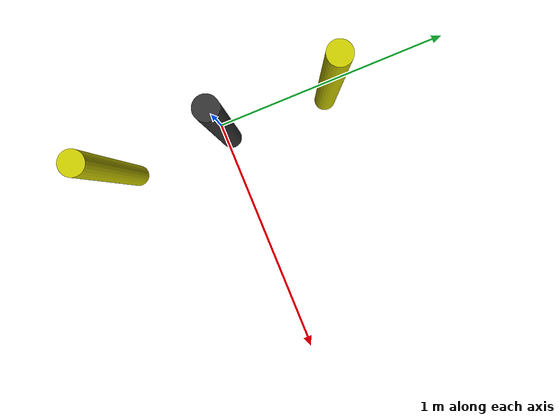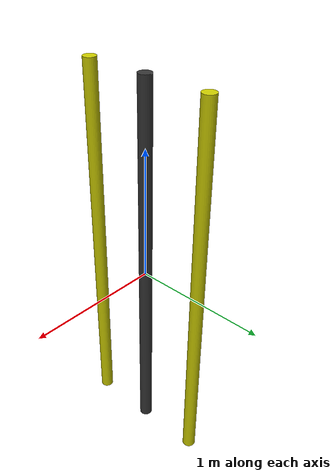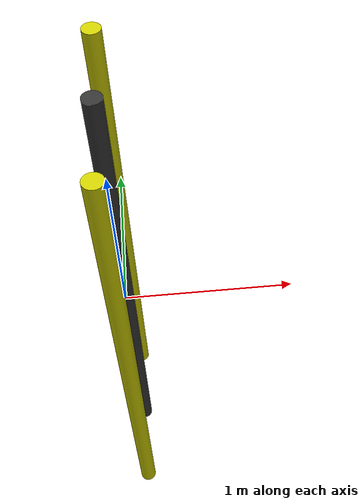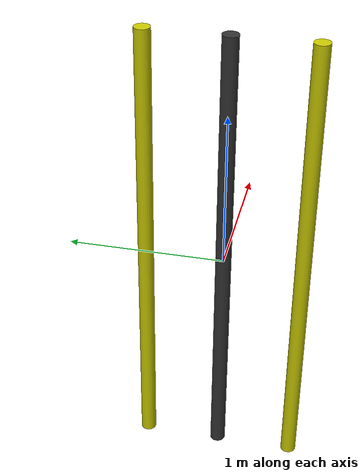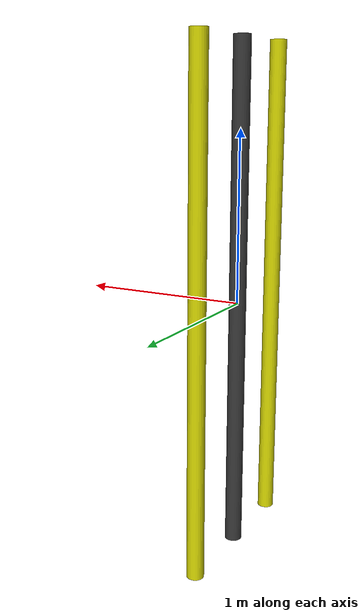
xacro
<?xml version="1.0"?>

<robot name="boey" xmlns:xacro="http://www.ros.org/wiki/xacro" >
  <xacro:arg name="debug" default="0"/>
  <xacro:arg name="namespace" default=""/>
  <xacro:arg name="suffix_ns" default="$(arg namespace)"/>

  <!-- Include the boey macro files -->
  <xacro:include filename="$(find boey_description)/urdf/base.xacro"/>
  <xacro:boey_base namespace="$(arg suffix_ns)"/>
</robot>

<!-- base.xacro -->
<robot xmlns:xacro="http://www.ros.org/wiki/xacro">

  <xacro:property name="radius" value="0.05" />
  <xacro:property name="dist" value="0.5" />
  <xacro:property name="length" value="3." />

  <material name="dark_gray"><color rgba="0.2 0.2 0.2 1.0"/></material>
  <material name="yellow"><color rgba="0.8 0.8 0.0 1.0"/></material>

  <!-- Vehicle macro -->
  <xacro:macro name="boey_base" params="namespace">

    <link name="${namespace}boey_link">
        <visual>
            <origin xyz="0 0 0" rpy="0 0 0"/>
            <geometry>
                <cylinder radius="${radius}" length="${length}"/>
            </geometry>
            <material name="dark_gray" />
        </visual>

        <collision>
            <origin xyz="0 0 0" rpy="0 0 0"/>
            <geometry>
                <cylinder radius="${radius}" length="${length}"/>
            </geometry>
        </collision>

        <inertial>
            <origin xyz="0 0 ${length/2}" rpy="0 0 0"/>
            <mass value="100000"/>
            <inertia
                ixx="10000.0" ixy="0.0" ixz="0.0"
                iyy="10000.0" iyz="0.0"
                izz="10000.0"/>
        </inertial>
      </link>

    <link name="${namespace}boey_left">
        <visual>
            <origin xyz="0 0 0" rpy="0 0 0"/>
            <geometry>
                <cylinder radius="${radius}" length="${length}"/>
            </geometry>
            <material name="yellow" />
        </visual>

        <collision>
            <origin xyz="0 0 0" rpy="0 0 0"/>
            <geometry>
                <cylinder radius="${radius}" length="${length}"/>
            </geometry>
        </collision>
        <inertial>
            <origin xyz="0 0 ${length/2}" rpy="0 0 0"/>
            <mass value="100000"/>
            <inertia
                ixx="10000.0" ixy="0.0" ixz="0.0"
                iyy="10000.0" iyz="0.0"
                izz="10000.0"/>
        </inertial>

      </link>

      <link name="${namespace}boey_right">
        <visual>
            <origin xyz="0 0 0" rpy="0 0 0"/>
            <geometry>
                <cylinder radius="${radius}" length="${length}"/>
            </geometry>
            <material name="yellow" />
        </visual>

        <collision>
            <origin xyz="0 0 0" rpy="0 0 0"/>
            <geometry>
                <cylinder radius="${radius}" length="${length}"/>
            </geometry>
        </collision>
        <inertial>
            <origin xyz="0 0 ${length/2}" rpy="0 0 0"/>
            <mass value="100000"/>
            <inertia
                ixx="10000.0" ixy="0.0" ixz="0.0"
                iyy="10000.0" iyz="0.0"
                izz="10000.0"/>
        </inertial>
      </link>

    <joint name="left_to_core" type="fixed">
        <origin xyz="0 ${dist} 0" rpy="0 0 0"/>
        <parent link="${namespace}boey_link" />
        <child link="${namespace}boey_left" />
      </joint>

      <joint name="right_to_core" type="fixed">
        <origin xyz="0 -${dist} 0" rpy="0 0 0"/>
        <parent link="${namespace}boey_link" />
        <child link="${namespace}boey_right" />
      </joint>

    <gazebo reference="${namespace}boey_link">
      <selfCollide>false</selfCollide>
      <material>Gazebo/DarkGrey</material>
      <laserRetro>200</laserRetro>
    </gazebo>

    <gazebo reference="${namespace}boey_right">
      <selfCollide>false</selfCollide>
      <material>Gazebo/Yellow</material>
      <laserRetro>200</laserRetro>
    </gazebo>

    <gazebo reference="${namespace}boey_left">
      <selfCollide>false</selfCollide>
      <material>Gazebo/Yellow</material>
      <laserRetro>200</laserRetro>
    </gazebo>

    <!-- Include the sensor modules -->
    <xacro:include filename="$(find boey_description)/urdf/sensors.xacro"/>

    <gazebo>
        <static>true</static>
    </gazebo>

  </xacro:macro>

</robot>
